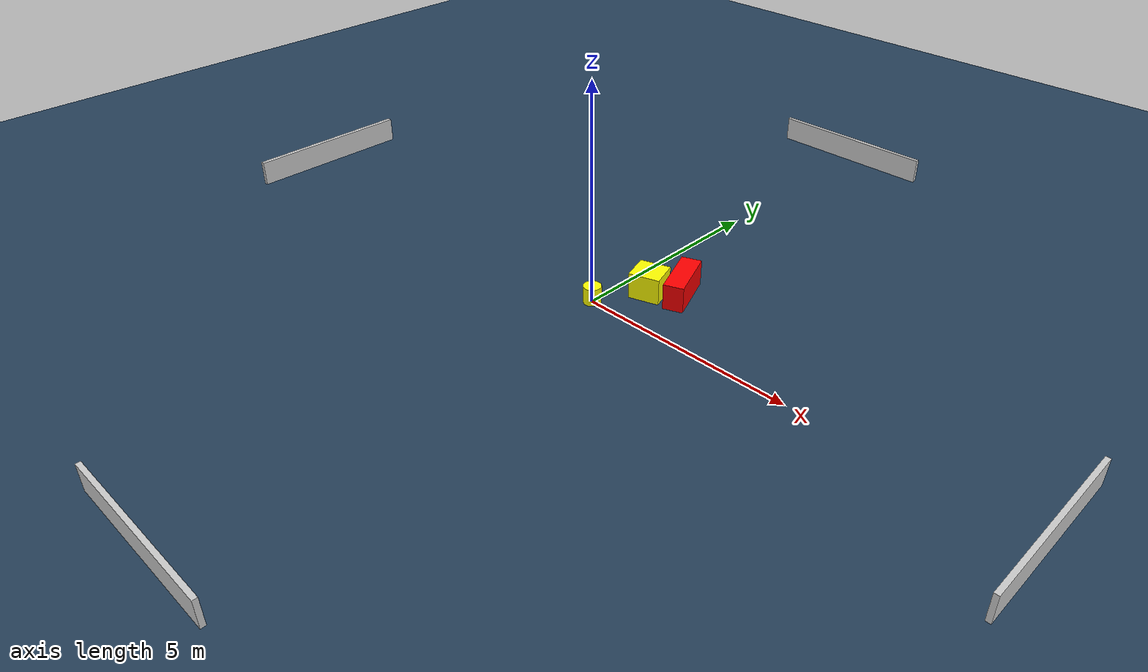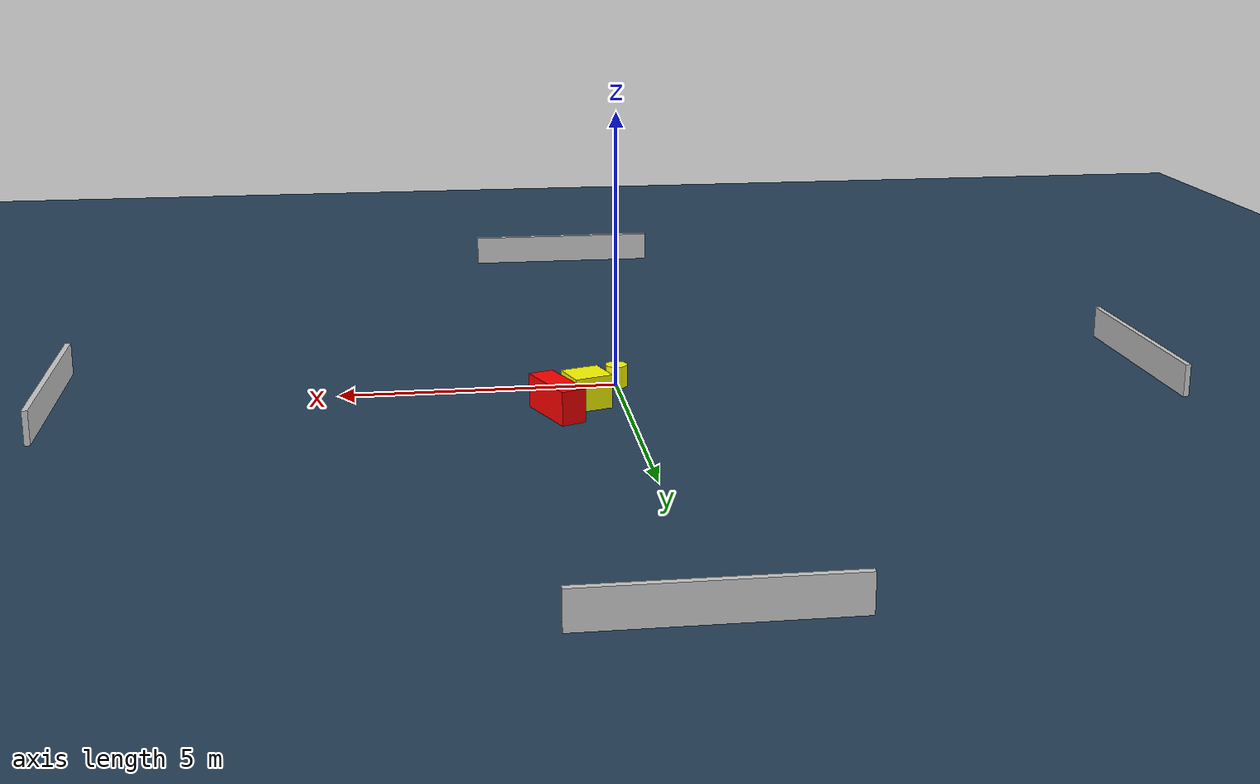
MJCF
<?xml version="1.0" ?>
<mujoco model="generated_environment">
  <option timestep="0.01" integrator="RK4" cone="elliptic"/>
  <default>
    <geom density="1"/>
  </default>
  <asset>
    <texture builtin="gradient" height="3072" name="skybox" rgb1="0.3 0.5 0.7" rgb2="0 0 0" type="skybox" width="512"/>
    <texture builtin="checker" height="300" name="groundplane" rgb1="0.2 0.3 0.4" rgb2="0.1 0.2 0.3" type="2d" width="300"/>
    <material name="groundplane" reflectance="0.2" texrepeat="5 5" texture="groundplane"/>
  </asset>
  <worldbody>
    <light dir="0 0 -1" directional="true" pos="0 0 1.5"/>
    <geom condim="3" friction="0.5 0.005 0.001" material="groundplane" name="floor" pos="0 0 0" size="0 0 0.05" type="plane"/>
    <body name="walls">
      <geom name="wall_1" condim="4" pos="-10.0 0.0 0.3" rgba="0.800000011920929 0.800000011920929 0.800000011920929 1.0" size="0.05 2.0 0.3" type="box"/>
      <geom name="wall_2" condim="4" pos="10.0 0.0 0.3" rgba="0.800000011920929 0.800000011920929 0.800000011920929 1.0" size="0.05 2.0 0.3" type="box"/>
      <geom name="wall_3" condim="4" pos="0.0 -10.0 0.3" rgba="0.800000011920929 0.800000011920929 0.800000011920929 1.0" size="2.0 0.05 0.3" type="box"/>
      <geom name="wall_4" condim="4" pos="0.0 10.0 0.3" rgba="0.800000011920929 0.800000011920929 0.800000011920929 1.0" size="2.0 0.05 0.3" type="box"/>
    </body>
    <body name="robot">
      <joint name="joint_x" type="slide" pos="0 0 0" axis="1 0 0"/>
      <joint name="joint_y" type="slide" pos="0 0 0" axis="0 1 0"/>
      <geom name="robot" type="cylinder" pos="0.0 0.0 0.2" size="0.2 0.2 0.0" mass="5.0" friction="1.0 0.005 0.0001" condim="4" rgba="1.0 1.0 0.0 1.0"/>
    </body>
    <body name="obstacle_1_movable">
      <geom name="obstacle_1_movable" condim="4" pos="0.6677093003493648 1.0778534455875157 0.3" euler="0 0 108.15950857370993" friction="0.0 0.005 0.001" rgba="1.0 1.0 0.0 1.0" size="0.32109142792978684 0.3490859481297346 0.3" type="box" mass="0.1"/>
      <joint type="free"/>
    </body>
    <body name="obstacle_2_static">
      <geom name="obstacle_2_static" condim="4" pos="1.2294068586905829 1.5054689522919742 0.3" euler="0 0 112.04281085147133" friction="0.0 0.005 0.001" rgba="1.0 0.0 0.0 1.0" size="0.6219769031636211 0.22688763542578208 0.3" type="box"/>
    </body>
  </worldbody>
  <actuator>
    <motor name="actuator_x" joint="joint_x" gear="1" ctrlrange="-1 1"/>
    <motor name="actuator_y" joint="joint_y" gear="1" ctrlrange="-1 1"/>
  </actuator>
</mujoco>
